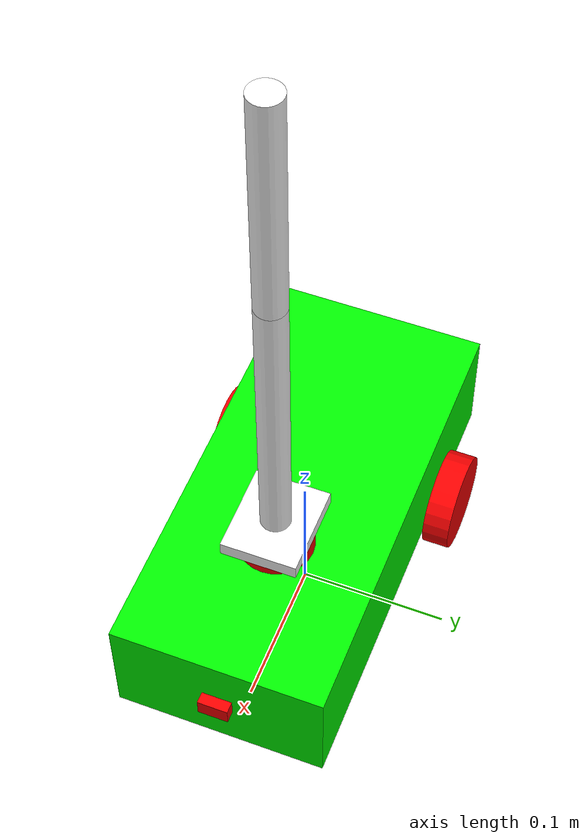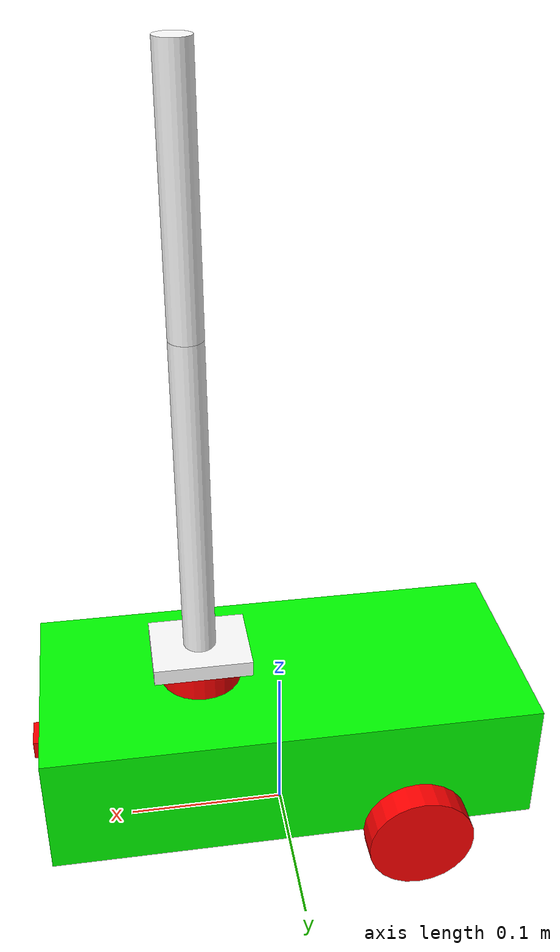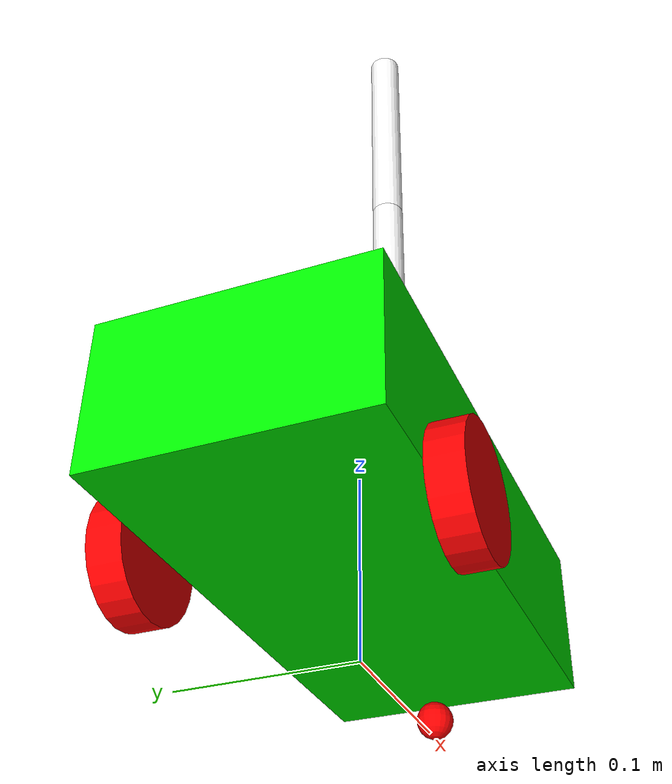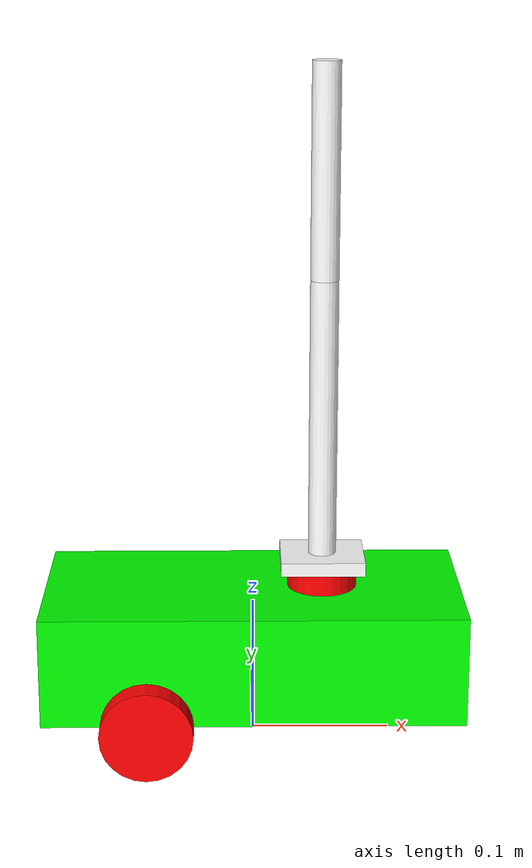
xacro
<?xml version="1.0"?>
<robot name="my_robot"
        xmlns:xacro="http://www.ros.org/wiki/xacro">
    <xacro:include filename="properties.xacro"/>
    <xacro:include filename="mobile_robot.xacro"/>
    <xacro:include filename="mobile_base_gazebo.xacro"/>
    <xacro:include filename="arm.xacro"/>

</robot>

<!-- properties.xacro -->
<robot name="my_robot"
        xmlns:xacro="http://www.ros.org/wiki/xacro">
    <xacro:macro name="red">
        <material name="red">
            <color rgba="1 0 0 1"/>
        </material>

    </xacro:macro>

    <xacro:macro name="white">
        <material name="white">
            <color rgba="1 1 1 1"/>
        </material>
    </xacro:macro>

    <xacro:macro name="inertial_box" params="m x y z o_xyz o_rpy" >
        <inertial>
            <origin xyz="${o_xyz}" rpy="${o_rpy}"/>
            <mass value="${m}"/>
            <inertia ixx="${(m*(1/12)*(y*y+z*z))}" ixy="0" ixz="0" iyy="${(m*(1/12)*(x*x+z*z))}" iyz="0" izz="${(m*(1/12)*(y*y+x*x))}"/>
        </inertial>

    </xacro:macro>
    <xacro:macro name="inertial_cylinder" params="m r l o_xyz o_rpy">
        <inertial>
            <origin xyz="${o_xyz}" rpy="${o_rpy}"/>
            <mass value="${m}"/>
            <inertia ixx="${(m*(1/12)*(3*r*r+l*l))}" ixy="0" ixz="0" iyy="${m*r*r/2}" iyz="0" izz="${(m*(1/12)*(3*r*r+l*l))}"/>
        </inertial>

    </xacro:macro>
    <xacro:macro name="caster_inertial" params="m r o_xyz o_rpy">
        <inertial>
            <origin xyz="${o_xyz}" rpy="${o_rpy}"/>
            <mass value="${m}"/>
            <inertia ixx="${2*m*r*r/5}" ixy="0" ixz="0" iyy="${2*m*r*r/5}" iyz="0" izz="${2*m*r*r/5}"/>
        </inertial>

    </xacro:macro>
</robot>

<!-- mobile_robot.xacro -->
<robot name="my_robot"
        xmlns:xacro="http://www.ros.org/wiki/xacro">

    <!-- Base Link Dimensions (TurtleBot3 Burger scale) -->
    <xacro:property name="base_length" value="0.30"/>
    <xacro:property name="base_width" value="0.14"/>
    <xacro:property name="base_height" value="0.08"/>
    <xacro:property name="base_mass" value="1.0"/>

    <!-- Drive Wheel Dimensions (D = 66mm, W = 18mm) -->
    <xacro:property name="wheel_radius" value="0.033"/>
    <xacro:property name="wheel_length" value="0.018"/>
    <xacro:property name="wheel_mass" value="0.05"/>

    <!-- Caster Wheel Dimensions (Ball caster) -->
    <xacro:property name="caster_radius" value="0.01"/>
    <xacro:property name="caster_mass" value="0.01"/>

    <!-- Camera Dimensions (Tiny camera module) -->
    <xacro:property name="camera_length" value="0.015"/>
    <xacro:property name="camera_width" value="0.020"/>
    <xacro:property name="camera_height" value="0.012"/>
    <xacro:property name="camera_mass" value="0.03"/>

    <!--lidar dimensions _____> -->
    <xacro:property name="lidar_radius" value="0.025"/>
    <xacro:property name="lidar_height" value="0.02"/>
    <xacro:property name="lidar_mass" value="0.05"/>

    <link name="base_link">
        <visual>
            <geometry>
                <box size="${base_length} ${base_width} ${base_height}"/>
            </geometry>
            <origin xyz="0.0 0.0 ${base_height / 2.0}" rpy="0.0 0.0 0.0"/>
            <material name="gre">
                <color rgba="0 1 0 1"/>
            </material>
        </visual>
        <collision>
            <geometry>
                <box size="${base_length} ${base_width} ${base_height}"/>
            </geometry>
            <origin xyz="0.0 0.0 ${base_height / 2.0}" rpy="0.0 0.0 0.0"/>

        </collision>
        <xacro:inertial_box m="${base_mass}" x="${base_length}" y="${base_width}" z="${base_height}" o_xyz="0 0 ${base_height / 2.0}" o_rpy="0 0 0 "/>
    </link>

    <link name="base_footprint"/>

    <xacro:macro name="wheel" params="prefix">
        <link name="${prefix}_wheel_link">
            <visual>
                <geometry>
                    <cylinder radius="${wheel_radius}" length="${wheel_length}"/>
                </geometry>
                <origin xyz="0 0 0" rpy="1.5708 0 0"/>
                <xacro:red/>
            </visual>
            <collision>
                <geometry>
                    <cylinder radius="${wheel_radius}" length="${wheel_length}"/>
                </geometry>
                <origin xyz="0 0 0" rpy="1.5708 0 0"/>
            </collision>
            <xacro:inertial_cylinder m="${wheel_mass}" r="${wheel_radius}" l="${wheel_length}" o_xyz="0 0 0" o_rpy="1.5708 0 0 "/>
        </link>
    </xacro:macro>

    <link name="caster_wheel">
        <visual>
            <geometry>
                <sphere radius="${caster_radius}"/>
            </geometry>
            <xacro:red/>
            <origin xyz="0 0 0" rpy="0 0 0"/>
        </visual>
        <collision>
            <geometry>
                <sphere radius="${caster_radius}"/>
            </geometry>
            <origin xyz="0 0 0" rpy="0 0 0"/>

        </collision>
        <xacro:caster_inertial m="${caster_mass}" r="${caster_radius}" o_xyz="0 0 0" o_rpy="0 0 0"/>
    </link>

    <xacro:wheel prefix="right"/>
    <xacro:wheel prefix="left"/>

    <link name="camera">
        <visual>
            <geometry>
                <box size="${camera_length} ${camera_width} ${camera_height}"/>
            </geometry>
            <xacro:red/>
            <origin xyz="0 0 0" rpy="0 0 0"/>
        </visual>
        <collision>
            <geometry>
                <box size="${camera_length} ${camera_width} ${camera_height}"/>
            </geometry>
            <origin xyz="0.0 0.0 0.0" rpy="0.0 0.0 0.0"/>

        </collision>
        <xacro:inertial_box m="${camera_mass}" x="${camera_length}" y="${camera_width}" z="${camera_height}" o_xyz="0 0 0" o_rpy="0 0 0"/>

    </link>

    <link name="lidar_link" >
        <visual>
            <geometry>
                <cylinder radius="${lidar_radius}"  length="${lidar_height}"/>
            </geometry>
            <origin xyz="0 0 0" rpy="0 0 0"/>
            <xacro:red/>
        </visual>
        <collision>
            <geometry>
                <cylinder radius="${lidar_radius}"  length="${lidar_height}"/>

            </geometry>
            <origin xyz="0 0 0" rpy="0 0 0"/>

        </collision>
        <xacro:inertial_cylinder m="${lidar_mass}" r="${lidar_radius}" l="${lidar_height}" o_xyz="0 0 0" o_rpy="0 0 0 "/>

    </link>

    <joint name="footprint_base" type="fixed">
        <parent link="base_footprint"/>
        <child link="base_link"/>
        <origin xyz="0 0 0.033" rpy="0 0 0"/>

    </joint>

    <xacro:macro name="wheel_joint" params="prefix x y z ">
        <joint name="${prefix}_wheel_joint" type="continuous">
            <parent link="base_link"/>
            <child link="${prefix}_wheel_link"/>
            <origin xyz="${x} ${y} ${z}" rpy="0 0 0"/>
            <axis xyz="0 1 0"/>

        </joint>

    </xacro:macro>

    <joint name="caster_wheel_joint" type="fixed">
        <parent link="base_link"/>
        <child link="caster_wheel"/>
        <axis xyz="0 0 1"/>
        <origin xyz="0.11 0 -0.023" rpy="0 0 0"/>

    </joint>

    <xacro:wheel_joint prefix="right" x="-0.075" y="-0.079" z="0"/>

    <xacro:wheel_joint prefix="left" x="-0.075" y="0.079" z="0"/>

    <joint name="camera_joint" type="fixed">
        <parent link="base_link"/>
        <child link="camera"/>
        <origin xyz="0.15 0 0.04" rpy="0 0 0"/>

    </joint>

    <joint name="lidar_base" type="fixed">
        <parent link="base_link"/>
        <child link="lidar_link"/>
        <origin xyz="0.05 0 0.09" rpy="0 0 0 "/>
    </joint>

</robot>

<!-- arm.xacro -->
<robot name="my_robot"
        xmlns:xacro="http://www.ros.org/wiki/xacro">
    <xacro:property name="arm_length" value=".06"/>
    <xacro:property name="arm_width" value="0.05"/>
    <xacro:property name="arm_height" value=".01" />
    <xacro:property name="cyl_radius" value=".01" />
    <xacro:property name="cyl_height" value=".2"/>

    <link name="arm_base">
        <visual>
            <geometry>
                <box size="${arm_length} ${arm_width} ${arm_height}"/>
             </geometry>
             <origin xyz="0 0 0 " rpy="0 0 0"/>
             <xacro:white/>
        </visual>
        <collision>
            <geometry>
                <box size="${arm_length} ${arm_width} ${arm_height}"/>
            </geometry>
             <origin xyz="0 0 0 " rpy="0 0 0"/>
        </collision>
        <xacro:inertial_box m="0.5" x="${arm_length}" y="${arm_width}" z="${arm_height}" o_xyz="0 0 ${arm_height / 2.0}" o_rpy="0 0 0 "/>

    </link>

    <link name="arm_1">
        <visual>
            <geometry>
                <cylinder radius="${cyl_radius}" length="${cyl_height}"/>
            </geometry>
            <origin xyz="0 0 0.1 " rpy="0 0 0 "/>
            <xacro:white/>
        </visual>
        <collision>
            <geometry>
                <cylinder radius="${cyl_radius}" length="${cyl_height}"/>
            </geometry>
            <origin xyz="0 0 0.1 " rpy="0 0 0 "/>
        </collision>
        <xacro:inertial_cylinder m=".03" r="${cyl_radius}" l="${cyl_height}" o_xyz="0 0 0" o_rpy="0 0 0 "/>

    </link>
        <link name="arm_2">
        <visual>
            <geometry>
                <cylinder radius="${cyl_radius}" length="${cyl_height-.05}"/>
            </geometry>
            <origin xyz="0 0 .075 " rpy="0 0 0 "/>
            <xacro:white/>
        </visual>
        <collision>
            <geometry>
                <cylinder radius="${cyl_radius}" length="${cyl_height-.05}"/>
            </geometry>
            <origin xyz="0 0 .075 " rpy="0 0 0 "/>
        </collision>
        <xacro:inertial_cylinder m=".03" r="${cyl_radius}" l="${cyl_height-.05}" o_xyz="0 0 0" o_rpy="0 0 0 "/>

    </link>

    <joint name="arm_lidar" type="fixed">
        <parent link="lidar_link"/>
        <child link="arm_base"/>

        <origin xyz="0 0 .01" rpy="0 0 0"/>
    </joint>

    <joint name="arm_base_1" type="revolute">
        <parent link="arm_base"/>
        <child link="arm_1"/>
        <axis xyz="0 1 0"/>
        <limit lower="0.985" upper="0" effort="100" velocity="1.2"/>
        <origin xyz="0 0 0.005" rpy="0 0 0"/>

    </joint>

    <joint name="arm_base_2" type="revolute">
        <parent link="arm_1"/>
        <child link="arm_2"/>
        <axis xyz="0 1 0"/>
        <limit lower="1.214" upper="0" effort="100" velocity="1.2"/>
        <origin xyz="0 0 0.2 " rpy="0 0 0"/>

    </joint>
</robot>
